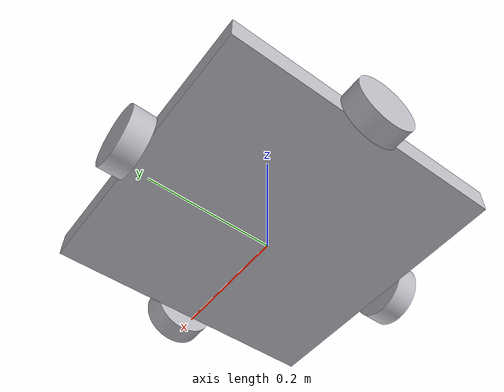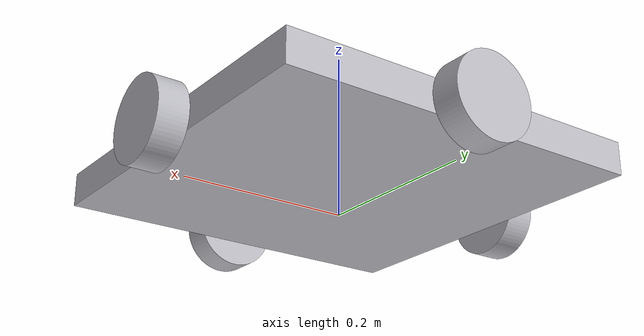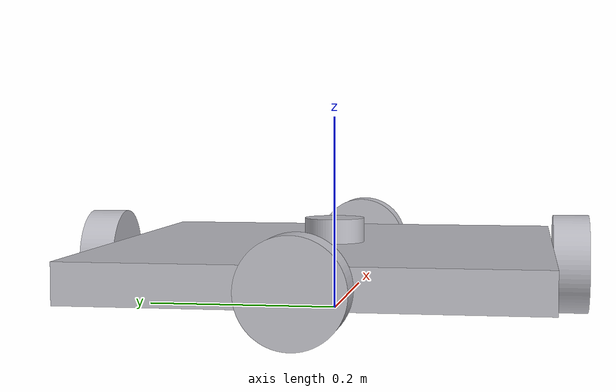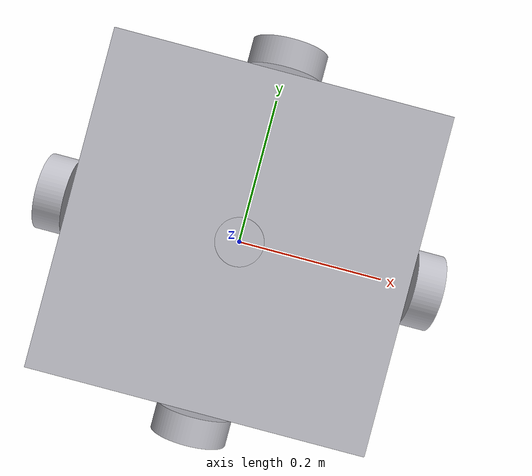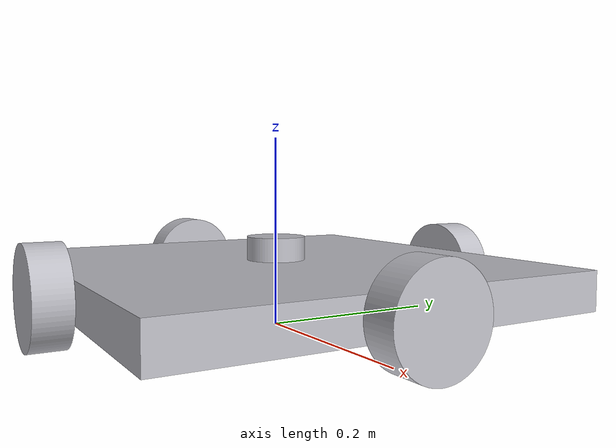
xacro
<?xml version="1.0" ?>
<robot name="final" xmlns:xacro="http://www.ros.org/wiki/xacro">

<xacro:include filename="$(find final_description)/urdf/materials.xacro" />
<xacro:include filename="$(find final_description)/urdf/final.trans" />
<xacro:include filename="$(find final_description)/urdf/final.gazebo" />
<link name="base_link">
  <inertial>
    <origin xyz="3.593065488485641e-17 0.0 0.05" rpy="0 0 0"/>
    <mass value="21.870000000000005"/>
    <inertia ixx="0.371972" iyy="0.371972" izz="0.738113" ixy="0.0" iyz="0.0" ixz="0.0"/>
  </inertial>
  <visual>
    <origin xyz="0 0 0" rpy="0 0 0"/>
    <geometry>
      <mesh filename="package://final_description/meshes/base_link.stl" scale="0.001 0.001 0.001"/>
    </geometry>
    <material name="silver"/>
  </visual>
  <collision>
    <origin xyz="0 0 0" rpy="0 0 0"/>
    <geometry>
      <mesh filename="package://final_description/meshes/base_link.stl" scale="0.001 0.001 0.001"/>
    </geometry>
  </collision>
</link>

<link name="wheel_3_1">
  <inertial>
    <origin xyz="0.018000000000000044 -8.041698750169481e-18 6.938893903907228e-18" rpy="0 0 0"/>
    <mass value="0.2629513051054657"/>
    <inertia ixx="0.000329" iyy="0.000193" izz="0.000193" ixy="-0.0" iyz="-0.0" ixz="-0.0"/>
  </inertial>
  <visual>
    <origin xyz="-0.225 -0.0 -0.05" rpy="0 0 0"/>
    <geometry>
      <mesh filename="package://final_description/meshes/wheel_3_1.stl" scale="0.001 0.001 0.001"/>
    </geometry>
    <material name="silver"/>
  </visual>
  <collision>
    <origin xyz="-0.225 -0.0 -0.05" rpy="0 0 0"/>
    <geometry>
      <mesh filename="package://final_description/meshes/wheel_3_1.stl" scale="0.001 0.001 0.001"/>
    </geometry>
  </collision>
</link>

<link name="wheel_4_1">
  <inertial>
    <origin xyz="0.0 0.018000000000000044 6.938893903907228e-18" rpy="0 0 0"/>
    <mass value="0.2629513051054657"/>
    <inertia ixx="0.000193" iyy="0.000329" izz="0.000193" ixy="-0.0" iyz="-0.0" ixz="0.0"/>
  </inertial>
  <visual>
    <origin xyz="-0.0 -0.225 -0.05" rpy="0 0 0"/>
    <geometry>
      <mesh filename="package://final_description/meshes/wheel_4_1.stl" scale="0.001 0.001 0.001"/>
    </geometry>
    <material name="silver"/>
  </visual>
  <collision>
    <origin xyz="-0.0 -0.225 -0.05" rpy="0 0 0"/>
    <geometry>
      <mesh filename="package://final_description/meshes/wheel_4_1.stl" scale="0.001 0.001 0.001"/>
    </geometry>
  </collision>
</link>

<link name="wheel_2_1">
  <inertial>
    <origin xyz="-0.018000000000000044 -8.041698750169481e-18 6.938893903907228e-18" rpy="0 0 0"/>
    <mass value="0.2629513051054657"/>
    <inertia ixx="0.000329" iyy="0.000193" izz="0.000193" ixy="-0.0" iyz="-0.0" ixz="0.0"/>
  </inertial>
  <visual>
    <origin xyz="0.225 -0.0 -0.05" rpy="0 0 0"/>
    <geometry>
      <mesh filename="package://final_description/meshes/wheel_2_1.stl" scale="0.001 0.001 0.001"/>
    </geometry>
    <material name="silver"/>
  </visual>
  <collision>
    <origin xyz="0.225 -0.0 -0.05" rpy="0 0 0"/>
    <geometry>
      <mesh filename="package://final_description/meshes/wheel_2_1.stl" scale="0.001 0.001 0.001"/>
    </geometry>
  </collision>
</link>

<link name="wheel_1_1">
  <inertial>
    <origin xyz="0.0 -0.018000000000000044 6.938893903907228e-18" rpy="0 0 0"/>
    <mass value="0.2629513051054657"/>
    <inertia ixx="0.000193" iyy="0.000329" izz="0.000193" ixy="0.0" iyz="0.0" ixz="0.0"/>
  </inertial>
  <visual>
    <origin xyz="-0.0 0.225 -0.05" rpy="0 0 0"/>
    <geometry>
      <mesh filename="package://final_description/meshes/wheel_1_1.stl" scale="0.001 0.001 0.001"/>
    </geometry>
    <material name="silver"/>
  </visual>
  <collision>
    <origin xyz="-0.0 0.225 -0.05" rpy="0 0 0"/>
    <geometry>
      <mesh filename="package://final_description/meshes/wheel_1_1.stl" scale="0.001 0.001 0.001"/>
    </geometry>
  </collision>
</link>

<link name="Component6_1">
  <inertial>
    <origin xyz="-3.765623764387375e-18 -3.765623764387375e-18 0.012499999999999997" rpy="0 0 0"/>
    <mass value="0.1041579336334428"/>
    <inertia ixx="3e-05" iyy="3e-05" izz="5e-05" ixy="0.0" iyz="0.0" ixz="0.0"/>
  </inertial>
  <visual>
    <origin xyz="-0.0 -0.0 -0.07" rpy="0 0 0"/>
    <geometry>
      <mesh filename="package://final_description/meshes/Component6_1.stl" scale="0.001 0.001 0.001"/>
    </geometry>
    <material name="silver"/>
  </visual>
  <collision>
    <origin xyz="-0.0 -0.0 -0.07" rpy="0 0 0"/>
    <geometry>
      <mesh filename="package://final_description/meshes/Component6_1.stl" scale="0.001 0.001 0.001"/>
    </geometry>
  </collision>
</link>

<joint name="Rev1" type="continuous">
  <origin xyz="0.225 0.0 0.05" rpy="0 0 0"/>
  <parent link="base_link"/>
  <child link="wheel_3_1"/>
  <axis xyz="1.0 0.0 0.0"/>
</joint>

<joint name="Rev2" type="continuous">
  <origin xyz="0.0 0.225 0.05" rpy="0 0 0"/>
  <parent link="base_link"/>
  <child link="wheel_4_1"/>
  <axis xyz="0.0 1.0 0.0"/>
</joint>

<joint name="Rev3" type="continuous">
  <origin xyz="-0.225 0.0 0.05" rpy="0 0 0"/>
  <parent link="base_link"/>
  <child link="wheel_2_1"/>
  <axis xyz="-1.0 0.0 0.0"/>
</joint>

<joint name="Rev4" type="continuous">
  <origin xyz="0.0 -0.225 0.05" rpy="0 0 0"/>
  <parent link="base_link"/>
  <child link="wheel_1_1"/>
  <axis xyz="0.0 -1.0 0.0"/>
</joint>

<joint name="Rigid5" type="fixed">
  <origin xyz="0.0 0.0 0.07" rpy="0 0 0"/>
  <parent link="base_link"/>
  <child link="Component6_1"/>
</joint>

</robot>

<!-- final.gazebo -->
<robot name="final" xmlns:xacro="http://www.ros.org/wiki/xacro" >

<xacro:property name="body_color" value="Gazebo/Silver" />

<gazebo>
  <plugin name="control" filename="libgazebo_ros_control.so"/>
</gazebo>
<gazebo reference="base_link">
  <material>${body_color}</material>
  <mu1>0.2</mu1>
  <mu2>0.2</mu2>
  <selfCollide>true</selfCollide>
  <gravity>true</gravity>
</gazebo>

<gazebo reference="wheel_3_1">
  <material>${body_color}</material>
  <mu1>0.2</mu1>
  <mu2>0.2</mu2>
  <selfCollide>true</selfCollide>
</gazebo>

<gazebo reference="wheel_4_1">
  <material>${body_color}</material>
  <mu1>0.2</mu1>
  <mu2>0.2</mu2>
  <selfCollide>true</selfCollide>
</gazebo>

<gazebo reference="wheel_2_1">
  <material>${body_color}</material>
  <mu1>0.2</mu1>
  <mu2>0.2</mu2>
  <selfCollide>true</selfCollide>
</gazebo>

<gazebo reference="wheel_1_1">
  <material>${body_color}</material>
  <mu1>0.2</mu1>
  <mu2>0.2</mu2>
  <selfCollide>true</selfCollide>
</gazebo>

<gazebo reference="Component6_1">
  <material>${body_color}</material>
  <mu1>0.2</mu1>
  <mu2>0.2</mu2>
  <selfCollide>true</selfCollide>
</gazebo>

</robot>
